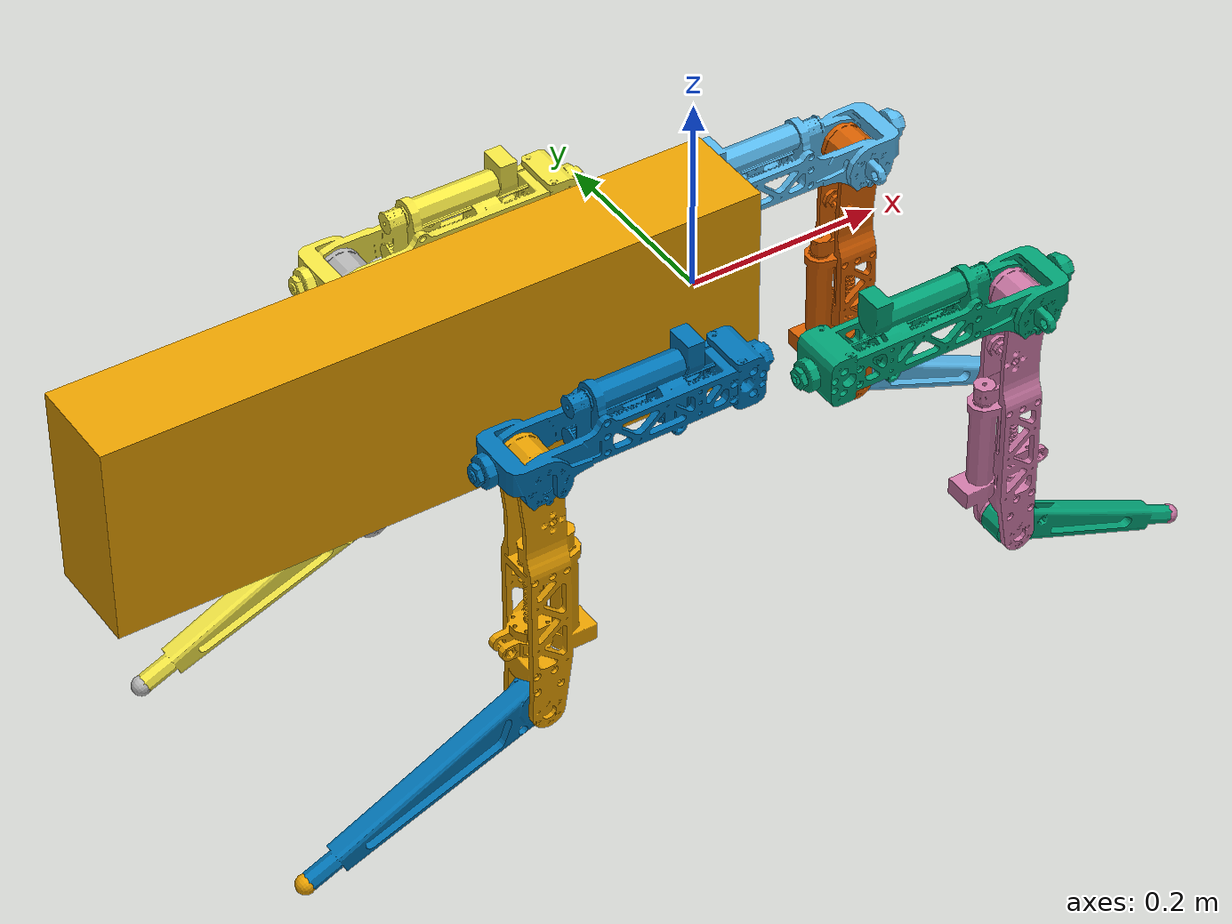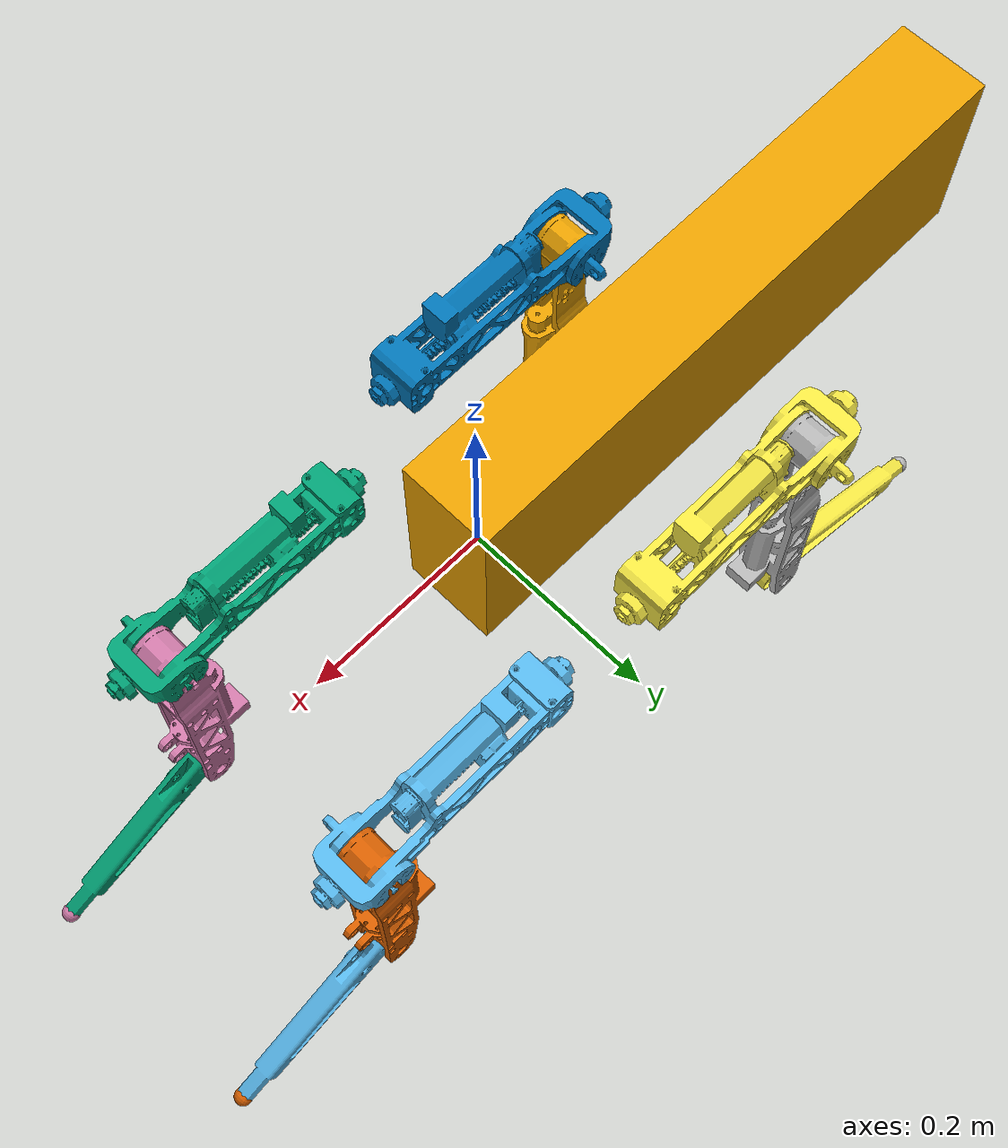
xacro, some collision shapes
<?xml version="1.0"?>

<robot xmlns:xacro="http://www.ros.org/wiki/xacro" name="dragon">

	<!--*********************  MACRO CONSTS  ************************-->

	<xacro:property name="FileStr"       value="package://agile_gazebo/models/agile_robot/meshes" />
	<xacro:property name="BodySTL"       value="body_unit_m.stl" />
	<xacro:property name="ShoulderSTL"   value="body_part.stl" />
	<xacro:property name="LegSTL"        value="upper_leg.stl" />
	<xacro:property name="FrontShineSTL" value="front_shine.stl" />
	<xacro:property name="BackShineSTL"  value="back_shine.stl" />

	<xacro:property name="Hip_Con_Lower" value="-0.262827" />
	<xacro:property name="Hip_Con_Upper" value="0.872600" />
	<xacro:property name="Damping"       value="0.01" />
	<xacro:property name="Friction"      value="0" />
	<xacro:property name="PI"            value="3.141592698" />
	<xacro:property name="Effort_Limit"            value="50" />
	<xacro:property name="Velocity_Limit"          value="1" />

	<!--*********************  MACRO TEMPLATES  ***********************-->
	<!-- BASE MACRO -->
	<xacro:macro name="BASE" params="Name Yaw Sgn Jo_Ori_X Jo_Ori_Y Jo_Ori_Z">
		<link name="${Name}_base">
			<visual>
				<geometry>
					<mesh filename="${FileStr}/${ShoulderSTL}"/>
				</geometry>
				<origin xyz="0 0 0" rpy="${PI/2} 0 ${Yaw}" />
			</visual>
			<collision>
				<geometry>
					<box size=".15 .09 .05"/>
				</geometry>
				<origin xyz="${Sgn*.104860} -.000933 .017767" rpy="${PI/2} 0 ${Yaw}" />
			</collision>
			<inertial>
				<mass value=".67833686"/>
				<inertia ixx=".000458198" ixy="-.000198409" ixz="-.000000564" iyy=".005121443" iyz="-.000002605" izz=".00519021"/>
				<origin xyz="${Sgn*.104860} -.000933 .017767" rpy="${PI/2} 0 ${Yaw}" />
			</inertial>
		</link>
		<joint name="${Name}_yaw" type="revolute">
			<parent link="body"/>
			<child link="${Name}_base"/>
			<axis xyz="1 0 0"/>
			<origin xyz="${Jo_Ori_X} ${Jo_Ori_Y} ${Jo_Ori_Z}" rpy="0 0 0"/>
			<dynamics damping="${Damping}" friction="${Friction}"/>
			<limit lower="-0.329319" upper="0.416405" effort="${Effort_Limit}" velocity="${Velocity_Limit}"/>
		</joint>
	</xacro:macro>
	<!-- LEG MACRO -->
	<xacro:macro name="LEG" params="Name Yaw Sgn Limit_L Limit_U">
		<link name="${Name}_leg">
			<visual>
				<geometry>
					<mesh filename="${FileStr}/${LegSTL}"/>
				</geometry>
				<origin xyz="0 0 0" rpy="${PI/2} 0 ${Yaw}" />
			</visual>
			<collision>
				<geometry>
					<box size=".098 .12 .054"/>
				</geometry>
				<origin xyz="${Sgn*.008484} -.001262 -.141167" rpy="${PI/2} 0 ${Yaw}" />
			</collision>
			<inertial>
				<mass value=".58240446"/>
				<inertia ixx=".004146058" ixy=".000104152" ixz="-.000001286" iyy=".000305157" iyz="-.00000174" izz=".0042282"/>
				<origin xyz="${Sgn*.008484} -.001262 -.141167" rpy="${PI/2} 0 ${Yaw}" />
			</inertial>
		</link>
		<joint name="${Name}_hip" type="revolute">
			<parent link="${Name}_base"/>
			<child link="${Name}_leg"/>
			<axis xyz="0 1 0"/>
			<origin xyz="0 0 0" rpy="0 0 0"/>
			<dynamics damping="${Damping}" friction="${Friction}"/>
			<limit lower="${Limit_L}" upper="${Limit_U}" effort="${Effort_Limit}" velocity="${Velocity_Limit}"/>
		</joint>
	</xacro:macro>
	<!-- FRONT SHINE MACRO -->
	<xacro:macro name="FSHINE" params="Name">
		<link name="f${Name}_shine">
			<visual>
				<geometry>
					<mesh filename="${FileStr}/${FrontShineSTL}"/>
				</geometry>
				<origin xyz="0 0 0" rpy="0 ${PI} ${PI/-2}" />
			</visual>
			<collision>
				<geometry>
					<box size=".022 .035995 .20"/>
				</geometry>
				<origin xyz="-.000015 -.000487 -.083659" rpy="0 ${PI} ${PI/-2}" />
			</collision>
			<inertial>
				<mass value=".29186134"/>
				<inertia ixx=".001325132" ixy="0" ixz="-.000000355" iyy=".001312476" iyz="-.000006983" izz=".000039606"/>
				<origin xyz="-.000015 -.000487 -.083659" rpy="0 ${PI} ${PI/-2}" />
			</inertial>
		</link>
		<joint name="f${Name}_knee" type="revolute">
			<parent link="f${Name}_leg"/>
			<child link="f${Name}_shine"/>
			<axis xyz="0 1 0"/>
			<origin xyz="0 0 -0.275" rpy="0 0 0"/>
			<dynamics damping="${Damping}" friction="${Friction}"/>
			<limit lower="-1.727748" upper="-0.595113" effort="${Effort_Limit}" velocity="${Velocity_Limit}"/>
		</joint>
	</xacro:macro>
	<!-- BACK SHINE MACRO -->
	<xacro:macro name="HSHINE" params="Name">
		<link name="h${Name}_shine">
			<visual>
				<geometry>
					<mesh filename="${FileStr}/${BackShineSTL}"/>
				</geometry>
				<origin xyz="0 0 0" rpy="0 0 ${PI/2}" />
			</visual>
			<collision>
				<geometry>
					<box size=".026 .043998 .24"/>
				</geometry>
				<origin xyz="-.000456 -.000290 -.104180" rpy="0 0 ${PI/2}" />
			</collision>
			<inertial>
				<mass value=".29186134"/>
				<inertia ixx=".001782767" ixy="-.000000069" ixz=".000008825" iyy=".001756178" iyz="-.000011054" izz=".000048789"/>
				<origin xyz="-.000456 -.000290 -.104180" rpy="0 0 ${PI/2}" />
			</inertial>
		</link>
		<joint name="h${Name}_knee" type="revolute">
			<parent link="h${Name}_leg"/>
			<child link="h${Name}_shine"/>
			<axis xyz="0 1 0"/>
			<origin xyz="0 0 -.275" rpy="0 0 0"/>
			<dynamics damping="${Damping}" friction="${Friction}"/>
			<limit lower="0.595113" upper="1.727748" effort="${Effort_Limit}" velocity="${Velocity_Limit}"/>
		</joint>
	</xacro:macro>
	<!-- FOOT MACRO -->
	<xacro:macro name="FOOT" params="Name Jo_Ori_Z">
		<link name="${Name}_foot">
			<visual>
				<geometry>
					<sphere radius=".01"/>
				</geometry>
				<origin xyz="0 0 0" rpy="0 0 0" />
			</visual>
			<collision>
				<geometry>
					<sphere radius=".01"/>
				</geometry>
				<origin xyz="0 0 0" rpy="0 0 0" />
			</collision>
			<inertial>
				<mass value=".1"/>
				<inertia ixx=".000004" ixy="0" ixz="0" iyy=".000004" iyz="0" izz=".000004"/>
				<origin xyz="0 0 0" rpy="0 0 0" />
			</inertial>
		</link>
		<joint name="${Name}_foot_fix" type="fixed">
			<parent link="${Name}_shine"/>
			<child link="${Name}_foot"/>
			<origin xyz="0 0 ${Jo_Ori_Z}" rpy="0 0 0"/>
		</joint>
	</xacro:macro>

	<!--*********  VIRTUAL LINK, BODY LINK and VIRTUAL JOINT  *********-->

	<link name="body">
		<visual>
			<geometry>
				<mesh filename="${FileStr}/${BodySTL}"/>
			</geometry>
			<origin xyz="0.2725 0 0" rpy="${PI/2} 0 ${PI/2}"/>
		</visual>
		<collision>
			<geometry>
				<box size=".1 .206 .666"/>
			</geometry>
			<origin xyz="-.294161 -.000952 .016932" rpy="${PI/2} 0 ${PI/2}"/>
		</collision>
		<inertial>
			<mass value="9.9629698"/>
			<inertia ixx=".506565255" ixy="-.000206853" ixz="-.004881012" iyy=".516386594" iyz=".006092892" izz=".074902421"/>
			<origin xyz="-.294161 -.000952 .016932" rpy="${PI/2} 0 ${PI/2}"/>
		</inertial>
	</link>

<!--********  LINKS and JOINTS defined by MACRO TEMPLATES  ********-->
<xacro:BASE Name="fl"  Yaw="${PI}" Sgn="-1" Jo_Ori_X=".2725"  Jo_Ori_Y=".135"  Jo_Ori_Z="-.045" />
<xacro:BASE Name="fr"  Yaw="${PI}" Sgn="-1" Jo_Ori_X=".2725"  Jo_Ori_Y="-.135" Jo_Ori_Z="-.045" />
<xacro:BASE Name="hl"  Yaw="0"     Sgn="1"  Jo_Ori_X="-.2725" Jo_Ori_Y=".155"  Jo_Ori_Z=".02"   />
<xacro:BASE Name="hr"  Yaw="0"     Sgn="1"  Jo_Ori_X="-.2725" Jo_Ori_Y="-.155" Jo_Ori_Z=".02"   />

<xacro:LEG   Name="fl" Yaw="${PI}" Sgn="-1" Limit_L="${Hip_Con_Lower}"  Limit_U="${Hip_Con_Upper}"/>
<xacro:LEG   Name="fr" Yaw="${PI}" Sgn="-1" Limit_L="${Hip_Con_Lower}"  Limit_U="${Hip_Con_Upper}"/>
<xacro:LEG   Name="hl" Yaw="0"     Sgn="1"  Limit_L="${-Hip_Con_Upper}" Limit_U="${-Hip_Con_Lower}"/>
<xacro:LEG   Name="hr" Yaw="0"     Sgn="1"  Limit_L="${-Hip_Con_Upper}" Limit_U="${-Hip_Con_Lower}"/>

<xacro:FSHINE Name="l" />
<xacro:FSHINE Name="r" />
<xacro:HSHINE Name="l" />
<xacro:HSHINE Name="r" />

<xacro:FOOT Name="fl"  Jo_Ori_Z="-.226"/>
<xacro:FOOT Name="fr"  Jo_Ori_Z="-.226"/>
<xacro:FOOT Name="hl"  Jo_Ori_Z="-.266"/>
<xacro:FOOT Name="hr"  Jo_Ori_Z="-.266"/>

</robot>
